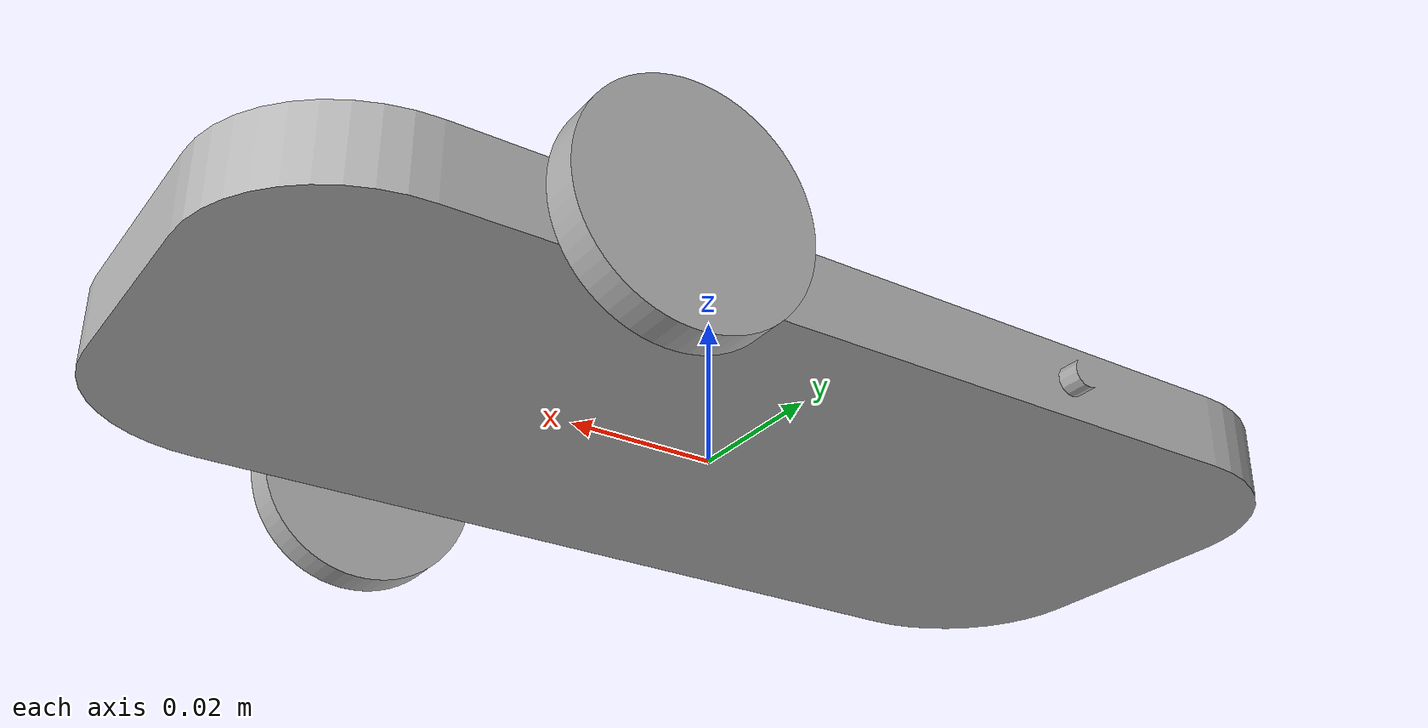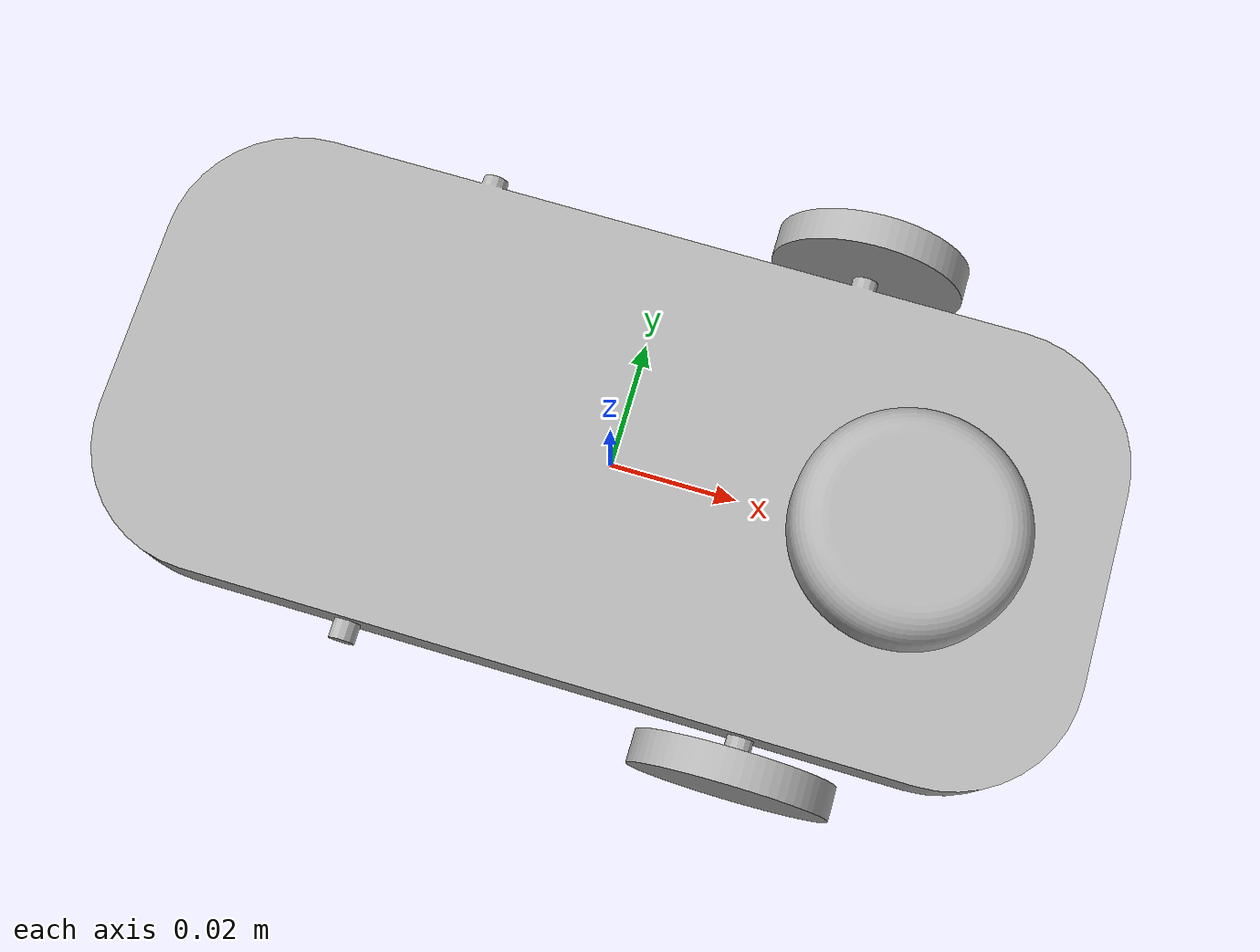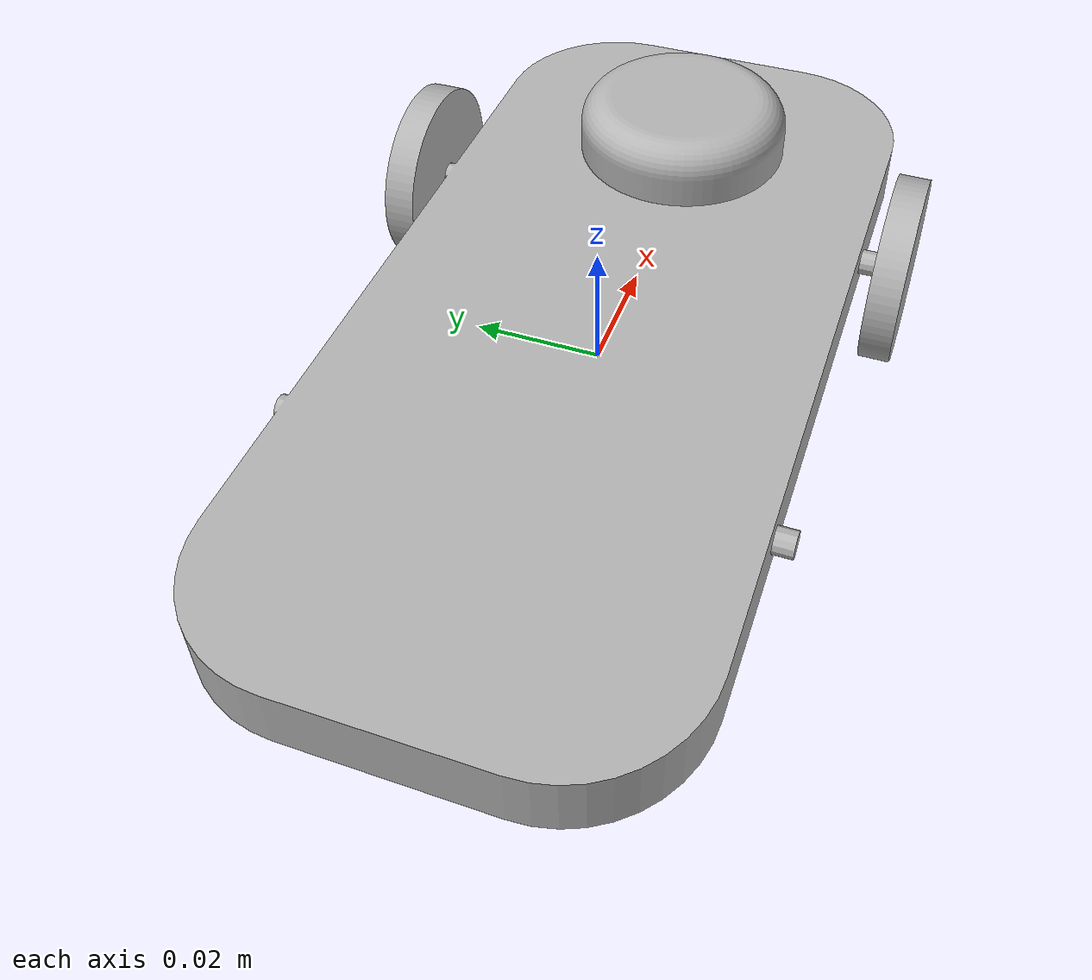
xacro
<?xml version="1.0" ?>
<robot name="roslab" xmlns:xacro="http://www.ros.org/wiki/xacro">

<xacro:include filename="$(find lab_6)/urdf/materials.xacro" />
<xacro:include filename="$(find lab_6)/urdf/roslab.trans" />
<xacro:include filename="$(find lab_6)/urdf/roslab.gazebo" />
<link name="base_link">
  <inertial>
    <origin xyz="-6.147218070764903e-16 0.0 0.005" rpy="0 0 0"/>
    <mass value="1.9631413242914169"/>
    <inertia ixx="0.000785" iyy="0.003488" izz="0.00424" ixy="-0.0" iyz="0.0" ixz="0.0"/>
  </inertial>
  <visual>
    <origin xyz="0 0 0" rpy="0 0 0"/>
    <geometry>
      <mesh filename="package://lab_6/meshes/base_link.stl" scale="0.001 0.001 0.001"/>
    </geometry>
    <material name="silver"/>
  </visual>
  <collision>
    <origin xyz="0 0 0" rpy="0 0 0"/>
    <geometry>
      <mesh filename="package://lab_6/meshes/base_link.stl" scale="0.001 0.001 0.001"/>
    </geometry>
  </collision>
</link>

<link name="wheel2_1">
  <inertial>
    <origin xyz="4.513750484491652e-15 0.0025107816711590417 3.469446951953614e-18" rpy="0 0 0"/>
    <mass value="0.005000127451526981"/>
    <inertia ixx="0.0" iyy="1e-06" izz="0.0" ixy="0.0" iyz="0.0" ixz="0.0"/>
  </inertial>
  <visual>
    <origin xyz="-0.03 -0.038 -0.005" rpy="0 0 0"/>
    <geometry>
      <mesh filename="package://lab_6/meshes/wheel2_1.stl" scale="0.001 0.001 0.001"/>
    </geometry>
    <material name="silver"/>
  </visual>
  <collision>
    <origin xyz="-0.03 -0.038 -0.005" rpy="0 0 0"/>
    <geometry>
      <mesh filename="package://lab_6/meshes/wheel2_1.stl" scale="0.001 0.001 0.001"/>
    </geometry>
  </collision>
</link>

<link name="wheel1_1">
  <inertial>
    <origin xyz="-2.258609965721803e-15 -0.0025107816711590417 -6.071532165918825e-18" rpy="0 0 0"/>
    <mass value="0.005000127451526977"/>
    <inertia ixx="0.0" iyy="1e-06" izz="0.0" ixy="0.0" iyz="-0.0" ixz="-0.0"/>
  </inertial>
  <visual>
    <origin xyz="-0.03 0.038 -0.005" rpy="0 0 0"/>
    <geometry>
      <mesh filename="package://lab_6/meshes/wheel1_1.stl" scale="0.001 0.001 0.001"/>
    </geometry>
    <material name="silver"/>
  </visual>
  <collision>
    <origin xyz="-0.03 0.038 -0.005" rpy="0 0 0"/>
    <geometry>
      <mesh filename="package://lab_6/meshes/wheel1_1.stl" scale="0.001 0.001 0.001"/>
    </geometry>
  </collision>
</link>

<link name="lidar_1">
  <inertial>
    <origin xyz="0.044999999999999984 -3.624078209382048e-18 0.004765447865046894" rpy="0 0 0"/>
    <mass value="0.02448591683461854"/>
    <inertia ixx="2e-06" iyy="2e-06" izz="4e-06" ixy="-0.0" iyz="0.0" ixz="0.0"/>
  </inertial>
  <visual>
    <origin xyz="-0.0 -0.0 -0.01" rpy="0 0 0"/>
    <geometry>
      <mesh filename="package://lab_6/meshes/lidar_1.stl" scale="0.001 0.001 0.001"/>
    </geometry>
    <material name="silver"/>
  </visual>
  <collision>
    <origin xyz="-0.0 -0.0 -0.01" rpy="0 0 0"/>
    <geometry>
      <mesh filename="package://lab_6/meshes/lidar_1.stl" scale="0.001 0.001 0.001"/>
    </geometry>
  </collision>
</link>

<joint name="Revolute 1" type="continuous">
  <origin xyz="0.03 0.038 0.005" rpy="0 0 0"/>
  <parent link="base_link"/>
  <child link="wheel2_1"/>
  <axis xyz="0.0 1.0 0.0"/>
</joint>

<joint name="Revolute 4" type="continuous">
  <origin xyz="0.03 -0.038 0.005" rpy="0 0 0"/>
  <parent link="base_link"/>
  <child link="wheel1_1"/>
  <axis xyz="0.0 -1.0 0.0"/>
</joint>

<joint name="Rigid 5" type="fixed">
  <origin xyz="0.0 0.0 0.01" rpy="0 0 0"/>
  <parent link="base_link"/>
  <child link="lidar_1"/>
</joint>

</robot>

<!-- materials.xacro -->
<robot name="roslab" xmlns:xacro="http://www.ros.org/wiki/xacro" >

<material name="silver">
  <color rgba="0.700 0.700 0.700 1.000"/>
</material>

</robot>

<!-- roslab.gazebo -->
<robot name="roslab" xmlns:xacro="http://www.ros.org/wiki/xacro" >

<xacro:property name="body_color" value="Gazebo/Silver" />

<gazebo>
  <plugin name="control" filename="libgazebo_ros_control.so"/>
</gazebo>
<gazebo reference="base_link">
  <material>${body_color}</material>
  <mu1>0.2</mu1>
  <mu2>0.2</mu2>
  <selfCollide>true</selfCollide>
  <gravity>true</gravity>
</gazebo>

<gazebo reference="wheel2_1">
  <material>${body_color}</material>
  <mu1>0.2</mu1>
  <mu2>0.2</mu2>
  <selfCollide>true</selfCollide>
</gazebo>

<gazebo reference="wheel1_1">
  <material>${body_color}</material>
  <mu1>0.2</mu1>
  <mu2>0.2</mu2>
  <selfCollide>true</selfCollide>
</gazebo>

<gazebo reference="lidar_1">
  <material>${body_color}</material>
  <mu1>0.2</mu1>
  <mu2>0.2</mu2>
  <selfCollide>true</selfCollide>
</gazebo>

</robot>
